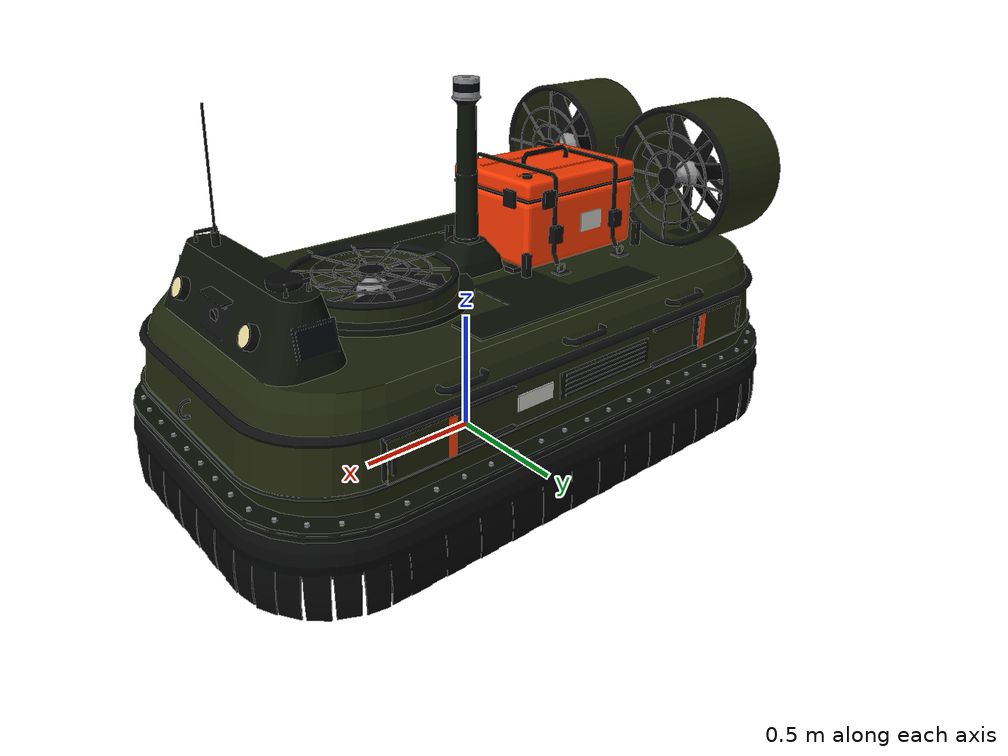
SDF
<?xml version="1.0"?>
<!-- GENERATED by tidal_vehicle_description/scripts/gen_description_v2.py from link_frames.json. Do not edit by hand. -->
<!-- Vehicle Version 2. Model frame: ground plane under hull centre; vehicle standing on its deployed tracks. -->
<!-- Total mass 300.00 kg; hull CoM offset 0.200418 0 -0.08; vehicle CoM height 0.457 m (TRACK mode). -->
<sdf version="1.9">
  <model name="hovercraft_v2">
    <self_collide>false</self_collide>

    <link name="base_link">
      <pose>0 0 0.5 0 0 0</pose>
      <inertial>
        <pose>0.200418 0 -0.08 0 0 0</pose>
        <mass>145.8</mass>
        <inertia><ixx>19.44</ixx><ixy>0</ixy><ixz>0</ixz>
                 <iyy>66.2175</iyy><iyz>0</iyz><izz>81.7695</izz></inertia>
      </inertial>
      <visual name="visual">
        <geometry><mesh><uri>model://hovercraft_v2/meshes/hull.dae</uri></mesh></geometry>
      </visual>
      <collision name="collision">
        <pose>0 0 0.01 0 0 0</pose>
        <geometry><box><size>2.3 1.2 0.4</size></box></geometry>
        <surface><friction><ode><mu>0.3</mu><mu2>0.3</mu2></ode></friction></surface>
      </collision>
      <sensor name="imu" type="imu"><pose>0 0 0 0 0 0</pose><gz_frame_id>imu_link</gz_frame_id>
        <always_on>1</always_on><update_rate>50</update_rate><topic>__default__</topic>
      </sensor>
      <sensor name="navsat" type="navsat"><pose>0.93 0.25 0.48 0 0 0</pose><gz_frame_id>base_link</gz_frame_id>
        <always_on>1</always_on><update_rate>10</update_rate>
      </sensor>
      <sensor name="ranger_fl" type="gpu_lidar"><pose>1 0.5 -0.2 0 1.5708 0</pose><gz_frame_id>base_link</gz_frame_id>
        <always_on>0</always_on><update_rate>10</update_rate>
        <!-- 5 rays over +/-3 deg (a narrow ToF beam). A single-sample gpu_lidar
             returns wrong ranges in gz-sensors 8, so don't use samples = 1. -->
        <lidar><scan><horizontal><samples>5</samples><resolution>1</resolution>
          <min_angle>-0.05</min_angle><max_angle>0.05</max_angle></horizontal></scan>
          <range><min>0.01</min><max>2.0</max><resolution>0.001</resolution></range></lidar>
      </sensor>
      <sensor name="ranger_fr" type="gpu_lidar"><pose>1 -0.5 -0.2 0 1.5708 0</pose><gz_frame_id>base_link</gz_frame_id>
        <always_on>0</always_on><update_rate>10</update_rate>
        <!-- 5 rays over +/-3 deg (a narrow ToF beam). A single-sample gpu_lidar
             returns wrong ranges in gz-sensors 8, so don't use samples = 1. -->
        <lidar><scan><horizontal><samples>5</samples><resolution>1</resolution>
          <min_angle>-0.05</min_angle><max_angle>0.05</max_angle></horizontal></scan>
          <range><min>0.01</min><max>2.0</max><resolution>0.001</resolution></range></lidar>
      </sensor>
      <sensor name="ranger_rl" type="gpu_lidar"><pose>-1 0.5 -0.2 0 1.5708 0</pose><gz_frame_id>base_link</gz_frame_id>
        <always_on>0</always_on><update_rate>10</update_rate>
        <!-- 5 rays over +/-3 deg (a narrow ToF beam). A single-sample gpu_lidar
             returns wrong ranges in gz-sensors 8, so don't use samples = 1. -->
        <lidar><scan><horizontal><samples>5</samples><resolution>1</resolution>
          <min_angle>-0.05</min_angle><max_angle>0.05</max_angle></horizontal></scan>
          <range><min>0.01</min><max>2.0</max><resolution>0.001</resolution></range></lidar>
      </sensor>
      <sensor name="ranger_rr" type="gpu_lidar"><pose>-1 -0.5 -0.2 0 1.5708 0</pose><gz_frame_id>base_link</gz_frame_id>
        <always_on>0</always_on><update_rate>10</update_rate>
        <!-- 5 rays over +/-3 deg (a narrow ToF beam). A single-sample gpu_lidar
             returns wrong ranges in gz-sensors 8, so don't use samples = 1. -->
        <lidar><scan><horizontal><samples>5</samples><resolution>1</resolution>
          <min_angle>-0.05</min_angle><max_angle>0.05</max_angle></horizontal></scan>
          <range><min>0.01</min><max>2.0</max><resolution>0.001</resolution></range></lidar>
      </sensor>
    </link>
    <link name="skirt">
      <pose>0 0 0.23 0 0 0</pose>
      <inertial>
        <pose>0 0 -0.03 0 0 0</pose>
        <mass>18.0</mass>
        <inertia><ixx>3.4614</ixx><ixy>0</ixy><ixz>0</ixz>
                 <iyy>9.4614</iyy><iyz>0</iyz><izz>12.75</izz></inertia>
      </inertial>
      <visual name="visual">
        <geometry><mesh><uri>model://hovercraft_v2/meshes/skirt.dae</uri></mesh></geometry>
      </visual>
      <collision name="collision">
        <pose>0 0 -0.03 0 0 0</pose>
        <geometry><box><size>2.5 1.5 0.24</size></box></geometry>
        <surface><friction><ode><mu>0.2</mu><mu2>0.2</mu2></ode></friction></surface>
      </collision>
    </link>
    <link name="lift_fan">
      <pose>0.45 0 0.74 0 0 0</pose>
      <inertial>
        <pose>0 0 0 0 0 0</pose>
        <mass>12.0</mass>
        <inertia><ixx>0.2368</ixx><ixy>0</ixy><ixz>0</ixz>
                 <iyy>0.2368</iyy><iyz>0</iyz><izz>0.4704</izz></inertia>
      </inertial>
      <visual name="visual">
        <geometry><mesh><uri>model://hovercraft_v2/meshes/lift_fan.dae</uri></mesh></geometry>
      </visual>
    </link>
    <link name="thrust_fan_left">
      <pose>-0.93 0.35 1.03 0 0 0</pose>
      <inertial>
        <pose>0 0 0 0 0 0</pose>
        <mass>10.0</mass>
        <inertia><ixx>0.3125</ixx><ixy>0</ixy><ixz>0</ixz>
                 <iyy>0.157583</iyy><iyz>0</iyz><izz>0.157583</izz></inertia>
      </inertial>
      <visual name="visual">
        <geometry><mesh><uri>model://hovercraft_v2/meshes/thrust_fan_left.dae</uri></mesh></geometry>
      </visual>
    </link>
    <link name="thrust_fan_right">
      <pose>-0.93 -0.35 1.03 0 0 0</pose>
      <inertial>
        <pose>0 0 0 0 0 0</pose>
        <mass>10.0</mass>
        <inertia><ixx>0.3125</ixx><ixy>0</ixy><ixz>0</ixz>
                 <iyy>0.157583</iyy><iyz>0</iyz><izz>0.157583</izz></inertia>
      </inertial>
      <visual name="visual">
        <geometry><mesh><uri>model://hovercraft_v2/meshes/thrust_fan_right.dae</uri></mesh></geometry>
      </visual>
    </link>
    <link name="rudder_left">
      <pose>-1.17 0.35 1.03 0 0 0</pose>
      <inertial>
        <pose>-0.038 0 0 0 0 0</pose>
        <mass>1.5</mass>
        <inertia><ixx>0.031268</ixx><ixy>0</ixy><ixz>0</ixz>
                 <iyy>0.0325</iyy><iyz>0</iyz><izz>0.001268</izz></inertia>
      </inertial>
      <visual name="visual">
        <geometry><mesh><uri>model://hovercraft_v2/meshes/rudder_left.dae</uri></mesh></geometry>
      </visual>
    </link>
    <link name="rudder_right">
      <pose>-1.17 -0.35 1.03 0 0 0</pose>
      <inertial>
        <pose>-0.038 0 0 0 0 0</pose>
        <mass>1.5</mass>
        <inertia><ixx>0.031268</ixx><ixy>0</ixy><ixz>0</ixz>
                 <iyy>0.0325</iyy><iyz>0</iyz><izz>0.001268</izz></inertia>
      </inertial>
      <visual name="visual">
        <geometry><mesh><uri>model://hovercraft_v2/meshes/rudder_right.dae</uri></mesh></geometry>
      </visual>
    </link>
    <link name="track_left">
      <pose>0 0.42 0.14 0 0 0</pose>
      <inertial>
        <pose>0 0 0 0 0 0</pose>
        <mass>34.0</mass>
        <inertia><ixx>0.444267</ixx><ixy>0</ixy><ixz>0</ixz>
                 <iyy>5.77547</iyy><iyz>0</iyz><izz>5.77547</izz></inertia>
      </inertial>
      <visual name="visual">
        <geometry><mesh><uri>model://hovercraft_v2/meshes/track_left.dae</uri></mesh></geometry>
      </visual>
      <collision name="collision">
        <pose>0 0 0 0 0 0</pose>
        <geometry><box><size>1.4 0.28 0.28</size></box></geometry>
        <surface><friction><ode><mu>1.0</mu><mu2>1.0</mu2></ode></friction></surface>
      </collision>
      <collision name="collision_1">
        <pose>0.7 0 0 1.5708 0 0</pose>
        <geometry><cylinder><radius>0.14</radius><length>0.28</length></cylinder></geometry>
        <surface><friction><ode><mu>1.0</mu><mu2>1.0</mu2></ode></friction></surface>
      </collision>
      <collision name="collision_2">
        <pose>-0.7 0 0 1.5708 0 0</pose>
        <geometry><cylinder><radius>0.14</radius><length>0.28</length></cylinder></geometry>
        <surface><friction><ode><mu>1.0</mu><mu2>1.0</mu2></ode></friction></surface>
      </collision>
    </link>
    <link name="track_right">
      <pose>0 -0.42 0.14 0 0 0</pose>
      <inertial>
        <pose>0 0 0 0 0 0</pose>
        <mass>34.0</mass>
        <inertia><ixx>0.444267</ixx><ixy>0</ixy><ixz>0</ixz>
                 <iyy>5.77547</iyy><iyz>0</iyz><izz>5.77547</izz></inertia>
      </inertial>
      <visual name="visual">
        <geometry><mesh><uri>model://hovercraft_v2/meshes/track_right.dae</uri></mesh></geometry>
      </visual>
      <collision name="collision">
        <pose>0 0 0 0 0 0</pose>
        <geometry><box><size>1.4 0.28 0.28</size></box></geometry>
        <surface><friction><ode><mu>1.0</mu><mu2>1.0</mu2></ode></friction></surface>
      </collision>
      <collision name="collision_1">
        <pose>0.7 0 0 1.5708 0 0</pose>
        <geometry><cylinder><radius>0.14</radius><length>0.28</length></cylinder></geometry>
        <surface><friction><ode><mu>1.0</mu><mu2>1.0</mu2></ode></friction></surface>
      </collision>
      <collision name="collision_2">
        <pose>-0.7 0 0 1.5708 0 0</pose>
        <geometry><cylinder><radius>0.14</radius><length>0.28</length></cylinder></geometry>
        <surface><friction><ode><mu>1.0</mu><mu2>1.0</mu2></ode></friction></surface>
      </collision>
    </link>
    <link name="puff_bow_left">
      <pose>0.74 0.7 0.51 0 0 0</pose>
      <inertial>
        <pose>0 0 0 0 0 0</pose>
        <mass>0.5</mass>
        <inertia><ixx>0.000818167</ixx><ixy>0</ixy><ixz>0</ixz>
                 <iyy>0.00363333</iyy><iyz>0</iyz><izz>0.00281817</izz></inertia>
      </inertial>
      <visual name="visual">
        <geometry><mesh><uri>model://hovercraft_v2/meshes/puff_bow_left.dae</uri></mesh></geometry>
      </visual>
    </link>
    <link name="puff_bow_right">
      <pose>0.74 -0.7 0.51 0 0 0</pose>
      <inertial>
        <pose>0 0 0 0 0 0</pose>
        <mass>0.5</mass>
        <inertia><ixx>0.000818167</ixx><ixy>0</ixy><ixz>0</ixz>
                 <iyy>0.00363333</iyy><iyz>0</iyz><izz>0.00281817</izz></inertia>
      </inertial>
      <visual name="visual">
        <geometry><mesh><uri>model://hovercraft_v2/meshes/puff_bow_right.dae</uri></mesh></geometry>
      </visual>
    </link>
    <link name="puff_stern_left">
      <pose>-0.74 0.7 0.51 0 0 0</pose>
      <inertial>
        <pose>0 0 0 0 0 0</pose>
        <mass>0.5</mass>
        <inertia><ixx>0.000818167</ixx><ixy>0</ixy><ixz>0</ixz>
                 <iyy>0.00363333</iyy><iyz>0</iyz><izz>0.00281817</izz></inertia>
      </inertial>
      <visual name="visual">
        <geometry><mesh><uri>model://hovercraft_v2/meshes/puff_stern_left.dae</uri></mesh></geometry>
      </visual>
    </link>
    <link name="puff_stern_right">
      <pose>-0.74 -0.7 0.51 0 0 0</pose>
      <inertial>
        <pose>0 0 0 0 0 0</pose>
        <mass>0.5</mass>
        <inertia><ixx>0.000818167</ixx><ixy>0</ixy><ixz>0</ixz>
                 <iyy>0.00363333</iyy><iyz>0</iyz><izz>0.00281817</izz></inertia>
      </inertial>
      <visual name="visual">
        <geometry><mesh><uri>model://hovercraft_v2/meshes/puff_stern_right.dae</uri></mesh></geometry>
      </visual>
    </link>
    <link name="payload_box">
      <pose>-0.42 0 0.74 0 0 0</pose>
      <inertial>
        <pose>0 0 0.175 0 0 0</pose>
        <mass>30.0</mass>
        <inertia><ixx>0.8125</ixx><ixy>0</ixy><ixz>0</ixz>
                 <iyy>1.20625</iyy><iyz>0</iyz><izz>1.40625</izz></inertia>
      </inertial>
      <visual name="visual">
        <geometry><mesh><uri>model://hovercraft_v2/meshes/payload_box.dae</uri></mesh></geometry>
      </visual>
      <collision name="collision">
        <pose>0 0 0.175 0 0 0</pose>
        <geometry><box><size>0.6 0.45 0.35</size></box></geometry>
        <surface><friction><ode><mu>0.5</mu><mu2>0.5</mu2></ode></friction></surface>
      </collision>
    </link>
    <link name="lidar_link">
      <pose>0 0 1.44 0 0 0</pose>
      <inertial>
        <pose>0 0 0 0 0 0</pose>
        <mass>1.0</mass>
        <inertia><ixx>0.00109147</ixx><ixy>0</ixy><ixz>0</ixz>
                 <iyy>0.00109147</iyy><iyz>0</iyz><izz>0.00132612</izz></inertia>
      </inertial>
      <visual name="visual">
        <geometry><mesh><uri>model://hovercraft_v2/meshes/lidar.dae</uri></mesh></geometry>
      </visual>
      <collision name="collision">
        <pose>0 0 0 0 0 0</pose>
        <geometry><cylinder><radius>0.0515</radius><length>0.0717</length></cylinder></geometry>
        <surface><friction><ode><mu>0.5</mu><mu2>0.5</mu2></ode></friction></surface>
      </collision>
      <sensor name="lidar_3d" type="gpu_lidar"><pose>0 0 0 0 0 0</pose><gz_frame_id>lidar_link</gz_frame_id>
        <always_on>1</always_on><update_rate>5</update_rate><visualize>0</visualize>
        <lidar>
          <scan>
            <horizontal><samples>360</samples><resolution>1</resolution>
              <min_angle>-3.14159</min_angle><max_angle>3.14159</max_angle></horizontal>
            <vertical><samples>8</samples><resolution>1</resolution>
              <min_angle>-0.26180</min_angle>
              <max_angle>0.26180</max_angle></vertical>
          </scan>
          <range><min>0.3</min><max>30.0</max><resolution>0.01</resolution></range>
          <noise><type>gaussian</type><mean>0</mean><stddev>0.01</stddev></noise>
        </lidar>
      </sensor>
    </link>
    <link name="camera_link">
      <pose>1.07 0 0.8 0 0 0</pose>
      <inertial>
        <pose>-0.055 0 0 0 0 0</pose>
        <mass>0.2</mass>
        <inertia><ixx>0.000295417</ixx><ixy>0</ixy><ixz>0</ixz>
                 <iyy>0.0001875</iyy><iyz>0</iyz><izz>0.000295417</izz></inertia>
      </inertial>
      <visual name="visual">
        <geometry><mesh><uri>model://hovercraft_v2/meshes/camera.dae</uri></mesh></geometry>
      </visual>
      <collision name="collision">
        <pose>-0.055 0 0 0 0 0</pose>
        <geometry><box><size>0.075 0.11 0.075</size></box></geometry>
        <surface><friction><ode><mu>0.5</mu><mu2>0.5</mu2></ode></friction></surface>
      </collision>
      <!-- Operator-camera profile: sufficient for scene awareness while
           avoiding a high-resolution render every simulation tick. -->
      <sensor name="front_camera" type="camera"><pose>0 0 0 0 0 0</pose><gz_frame_id>camera_link</gz_frame_id>
        <always_on>1</always_on><update_rate>5</update_rate>
        <camera><horizontal_fov>1.40</horizontal_fov>
          <image><width>320</width><height>240</height><format>R8G8B8</format></image>
          <clip><near>0.05</near><far>60</far></clip></camera>
      </sensor>
    </link>

    <joint name="skirt_joint" type="fixed">
      <parent>base_link</parent>
      <child>skirt</child>
    </joint>
    <joint name="lift_fan_joint" type="revolute">
      <parent>base_link</parent>
      <child>lift_fan</child>
      <axis>
        <xyz>0 0 1</xyz>
        <limit><lower>-1e16</lower><upper>1e16</upper><effort>20</effort></limit>
        <dynamics><damping>0.01</damping></dynamics>
      </axis>
    </joint>
    <joint name="thrust_fan_left_joint" type="revolute">
      <parent>base_link</parent>
      <child>thrust_fan_left</child>
      <axis>
        <xyz>1 0 0</xyz>
        <limit><lower>-1e16</lower><upper>1e16</upper><effort>20</effort></limit>
        <dynamics><damping>0.01</damping></dynamics>
      </axis>
    </joint>
    <joint name="thrust_fan_right_joint" type="revolute">
      <parent>base_link</parent>
      <child>thrust_fan_right</child>
      <axis>
        <xyz>1 0 0</xyz>
        <limit><lower>-1e16</lower><upper>1e16</upper><effort>20</effort></limit>
        <dynamics><damping>0.01</damping></dynamics>
      </axis>
    </joint>
    <joint name="rudder_left_joint" type="revolute">
      <parent>base_link</parent>
      <child>rudder_left</child>
      <axis>
        <xyz>0 0 1</xyz>
        <limit><lower>-0.5236</lower><upper>0.5236</upper><effort>20</effort></limit>
        <dynamics><damping>0.5</damping></dynamics>
      </axis>
    </joint>
    <joint name="rudder_right_joint" type="revolute">
      <parent>base_link</parent>
      <child>rudder_right</child>
      <axis>
        <xyz>0 0 1</xyz>
        <limit><lower>-0.5236</lower><upper>0.5236</upper><effort>20</effort></limit>
        <dynamics><damping>0.5</damping></dynamics>
      </axis>
    </joint>
    <joint name="track_left_joint" type="prismatic">
      <parent>base_link</parent>
      <child>track_left</child>
      <axis>
        <xyz>0 0 1</xyz>
        <limit><lower>-0.02</lower><upper>0.27</upper><effort>6000.0</effort></limit>
        <dynamics><damping>200.0</damping></dynamics>
      </axis>
    </joint>
    <joint name="track_right_joint" type="prismatic">
      <parent>base_link</parent>
      <child>track_right</child>
      <axis>
        <xyz>0 0 1</xyz>
        <limit><lower>-0.02</lower><upper>0.27</upper><effort>6000.0</effort></limit>
        <dynamics><damping>200.0</damping></dynamics>
      </axis>
    </joint>
    <joint name="puff_bow_left_joint" type="prismatic">
      <parent>base_link</parent>
      <child>puff_bow_left</child>
      <axis>
        <xyz>-1 0 0</xyz>
        <limit><lower>-0.02</lower><upper>0.28</upper><effort>20</effort></limit>
        <dynamics><damping>1.0</damping></dynamics>
      </axis>
    </joint>
    <joint name="puff_bow_right_joint" type="prismatic">
      <parent>base_link</parent>
      <child>puff_bow_right</child>
      <axis>
        <xyz>-1 0 0</xyz>
        <limit><lower>-0.02</lower><upper>0.28</upper><effort>20</effort></limit>
        <dynamics><damping>1.0</damping></dynamics>
      </axis>
    </joint>
    <joint name="puff_stern_left_joint" type="prismatic">
      <parent>base_link</parent>
      <child>puff_stern_left</child>
      <axis>
        <xyz>1 0 0</xyz>
        <limit><lower>-0.02</lower><upper>0.28</upper><effort>20</effort></limit>
        <dynamics><damping>1.0</damping></dynamics>
      </axis>
    </joint>
    <joint name="puff_stern_right_joint" type="prismatic">
      <parent>base_link</parent>
      <child>puff_stern_right</child>
      <axis>
        <xyz>1 0 0</xyz>
        <limit><lower>-0.02</lower><upper>0.28</upper><effort>20</effort></limit>
        <dynamics><damping>1.0</damping></dynamics>
      </axis>
    </joint>
    <joint name="payload_box_joint" type="fixed">
      <parent>base_link</parent>
      <child>payload_box</child>
    </joint>
    <joint name="lidar_joint" type="fixed">
      <parent>base_link</parent>
      <child>lidar_link</child>
    </joint>
    <joint name="camera_joint" type="fixed">
      <parent>base_link</parent>
      <child>camera_link</child>
    </joint>

    <plugin filename="tidal_vehicle_plugins" name="hover::AirCushion">
      <link_name>base_link</link_name>
      <corner>0.935 0.480 -0.470</corner><corner>0.935 -0.480 -0.470</corner><corner>-0.935 0.480 -0.470</corner><corner>-0.935 -0.480 -0.470</corner>
      <target_gap>0.05</target_gap>
      <stiffness>18000</stiffness>
      <damping>800</damping>
      <max_force_factor>2.0</max_force_factor>
      <spinup_time>2.0</spinup_time>
      <glide_linear_drag>50</glide_linear_drag>
      <glide_quadratic_drag>25</glide_quadratic_drag>
      <glide_yaw_drag>200</glide_yaw_drag>
      <glide_lateral_factor>3</glide_lateral_factor>
      <max_thrust>200</max_thrust>
      <thrust_time_constant>0.4</thrust_time_constant>
      <!-- reversible ducted fans (AGENTS.md): 80 % reverse thrust, so the vehicle
           can brake and hold station on the corridor's ~5 deg shore incline -->
      <reverse_thrust_fraction>0.8</reverse_thrust_fraction>
      <yaw_reserve_fraction>0.3</yaw_reserve_fraction>
      <thrust_point_left>-0.93 0.35 0.53</thrust_point_left>
      <thrust_point_right>-0.93 -0.35 0.53</thrust_point_right>
      <rudder_point>-1.17 0 0.53</rudder_point>
      <mud_viscous_drag>1800</mud_viscous_drag>
      <mud_rolling_resistance>0.25</mud_rolling_resistance>
      <mud_yaw_drag>1000</mud_yaw_drag>
      <water_hull_drag>720</water_hull_drag>
      <water_yaw_drag>500</water_yaw_drag>
      <vent_length>0.06</vent_length>
      <rudder_wash_coeff>0.55</rudder_wash_coeff>
      <rudder_control>true</rudder_control>
      <rudder_max_angle>0.4363</rudder_max_angle>
      <rudder_min_thrust>60</rudder_min_thrust>
      <rudder_rate>1.5</rudder_rate>
      <!-- puff ports: bow/stern side vents of cushion air, 2*Cd*p*A each -->
      <puff_port_force>37.5</puff_port_force>
      <puff_port_point>0.74 0.6974 0.01</puff_port_point>
      <puff_port_time_constant>0.15</puff_port_time_constant>
      <puff_lateral_gain>150</puff_lateral_gain>
      <puff_shutter_travel>0.26</puff_shutter_travel>
      <heading_kp>600</heading_kp><heading_kd>400</heading_kd>
      <speed_kp>480</speed_kp><speed_ki>120</speed_ki><yaw_rate_kp>400</yaw_rate_kp>
      <cmd_timeout>0.5</cmd_timeout>
      <use_raycast>true</use_raycast>
      <log_file>/tmp/hover_{model}.csv</log_file>
      <log_joint>track_left_joint</log_joint><log_joint>track_right_joint</log_joint>
      <log_joint>rudder_left_joint</log_joint><log_joint>puff_bow_right_joint</log_joint>
    </plugin>

    <plugin filename="gz-sim-track-controller-system" name="gz::sim::systems::TrackController">
      <link>track_left</link>
      <min_velocity>-1.92</min_velocity>
      <max_velocity>1.92</max_velocity>
    </plugin>
    <plugin filename="gz-sim-track-controller-system" name="gz::sim::systems::TrackController">
      <link>track_right</link>
      <min_velocity>-1.92</min_velocity>
      <max_velocity>1.92</max_velocity>
    </plugin>
    <plugin filename="gz-sim-tracked-vehicle-system" name="gz::sim::systems::TrackedVehicle">
      <left_track><link>track_left</link></left_track>
      <right_track><link>track_right</link></right_track>
      <tracks_separation>0.840</tracks_separation>
      <tracks_height>0.280</tracks_height>
      <steering_efficiency>0.5</steering_efficiency>
      <linear_velocity><min_velocity>-1.5</min_velocity><max_velocity>1.5</max_velocity>
        <min_acceleration>-1.5</min_acceleration><max_acceleration>1.0</max_acceleration></linear_velocity>
      <angular_velocity><min_velocity>-1.0</min_velocity><max_velocity>1.0</max_velocity>
        <min_acceleration>-2.0</min_acceleration><max_acceleration>2.0</max_acceleration></angular_velocity>
      <odom_topic>internal/track_odometry</odom_topic><tf_topic>internal/track_tf</tf_topic>
      <odom_publish_frequency>20</odom_publish_frequency>
    </plugin>

    <plugin filename="gz-sim-joint-position-controller-system" name="gz::sim::systems::JointPositionController">
      <joint_name>track_left_joint</joint_name>
      <sub_topic>tracks_cmd</sub_topic>
      <use_velocity_commands>true</use_velocity_commands>
      <p_gain>4.0</p_gain><i_gain>0</i_gain><d_gain>0</d_gain>
      <cmd_max>0.2</cmd_max><cmd_min>-0.2</cmd_min>
      <initial_position>0</initial_position>
    </plugin>
    <plugin filename="gz-sim-joint-position-controller-system" name="gz::sim::systems::JointPositionController">
      <joint_name>track_right_joint</joint_name>
      <sub_topic>tracks_cmd</sub_topic>
      <use_velocity_commands>true</use_velocity_commands>
      <p_gain>4.0</p_gain><i_gain>0</i_gain><d_gain>0</d_gain>
      <cmd_max>0.2</cmd_max><cmd_min>-0.2</cmd_min>
      <initial_position>0</initial_position>
    </plugin>
    <plugin filename="gz-sim-joint-position-controller-system" name="gz::sim::systems::JointPositionController">
      <joint_name>rudder_left_joint</joint_name><sub_topic>rudder_left_cmd</sub_topic>
      <p_gain>20</p_gain><d_gain>0.5</d_gain>
      <cmd_max>20</cmd_max><cmd_min>-20</cmd_min>
    </plugin>
    <plugin filename="gz-sim-joint-position-controller-system" name="gz::sim::systems::JointPositionController">
      <joint_name>rudder_right_joint</joint_name><sub_topic>rudder_right_cmd</sub_topic>
      <p_gain>20</p_gain><d_gain>0.5</d_gain>
      <cmd_max>20</cmd_max><cmd_min>-20</cmd_min>
    </plugin>
    <plugin filename="gz-sim-joint-position-controller-system" name="gz::sim::systems::JointPositionController">
      <joint_name>puff_bow_left_joint</joint_name><sub_topic>puff_bow_left_cmd</sub_topic>
      <use_velocity_commands>true</use_velocity_commands>
      <p_gain>10.0</p_gain><i_gain>0</i_gain><d_gain>0</d_gain>
      <cmd_max>1.0</cmd_max><cmd_min>-1.0</cmd_min>
      <initial_position>0</initial_position>
    </plugin>
    <plugin filename="gz-sim-joint-position-controller-system" name="gz::sim::systems::JointPositionController">
      <joint_name>puff_bow_right_joint</joint_name><sub_topic>puff_bow_right_cmd</sub_topic>
      <use_velocity_commands>true</use_velocity_commands>
      <p_gain>10.0</p_gain><i_gain>0</i_gain><d_gain>0</d_gain>
      <cmd_max>1.0</cmd_max><cmd_min>-1.0</cmd_min>
      <initial_position>0</initial_position>
    </plugin>
    <plugin filename="gz-sim-joint-position-controller-system" name="gz::sim::systems::JointPositionController">
      <joint_name>puff_stern_left_joint</joint_name><sub_topic>puff_stern_left_cmd</sub_topic>
      <use_velocity_commands>true</use_velocity_commands>
      <p_gain>10.0</p_gain><i_gain>0</i_gain><d_gain>0</d_gain>
      <cmd_max>1.0</cmd_max><cmd_min>-1.0</cmd_min>
      <initial_position>0</initial_position>
    </plugin>
    <plugin filename="gz-sim-joint-position-controller-system" name="gz::sim::systems::JointPositionController">
      <joint_name>puff_stern_right_joint</joint_name><sub_topic>puff_stern_right_cmd</sub_topic>
      <use_velocity_commands>true</use_velocity_commands>
      <p_gain>10.0</p_gain><i_gain>0</i_gain><d_gain>0</d_gain>
      <cmd_max>1.0</cmd_max><cmd_min>-1.0</cmd_min>
      <initial_position>0</initial_position>
    </plugin>
    <plugin filename="gz-sim-joint-state-publisher-system" name="gz::sim::systems::JointStatePublisher"/>

    <!-- /odom + TF (map -> base_link). Ground-truth pose, valid in every mode.
         Idealised: stated in docs. -->
    <plugin filename="gz-sim-odometry-publisher-system" name="gz::sim::systems::OdometryPublisher">
      <odom_frame>map</odom_frame>
      <robot_base_frame>base_link</robot_base_frame>
      <dimensions>3</dimensions>
      <odom_publish_frequency>50</odom_publish_frequency>
    </plugin>
  </model>
</sdf>
